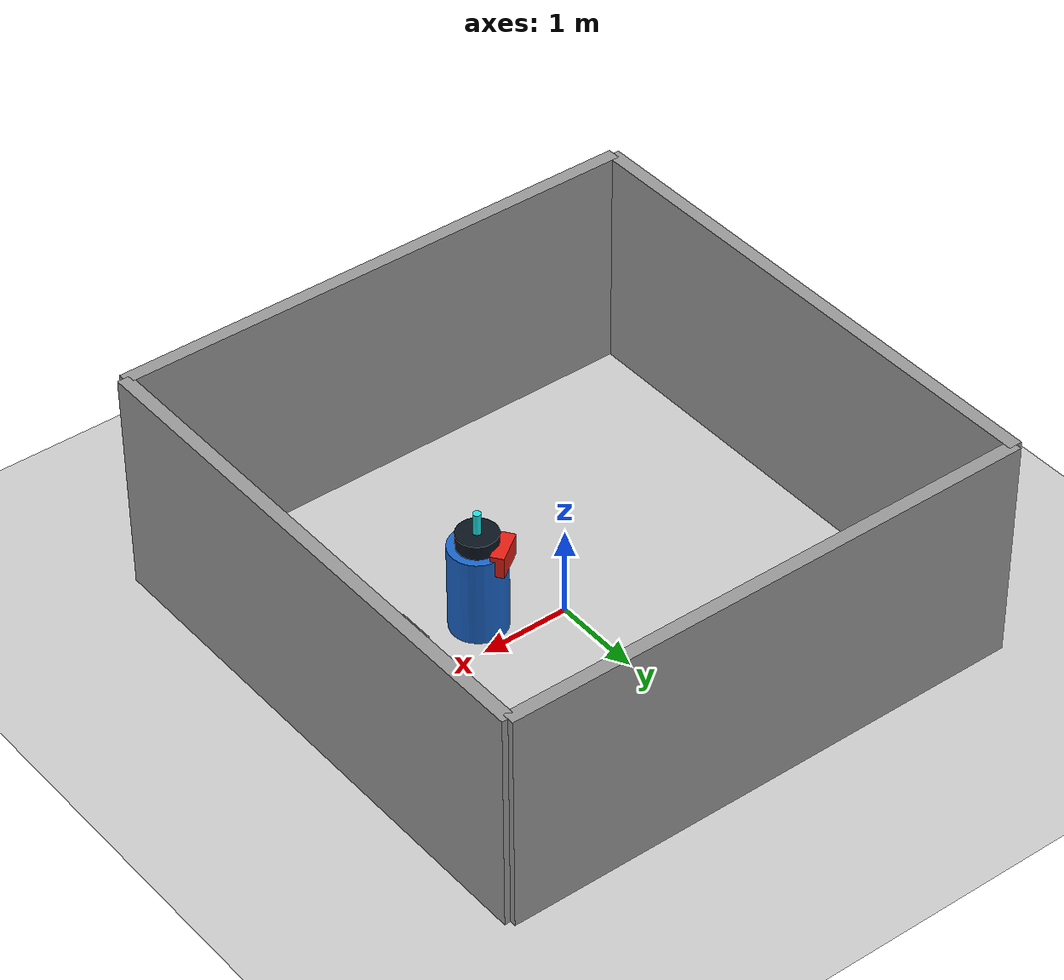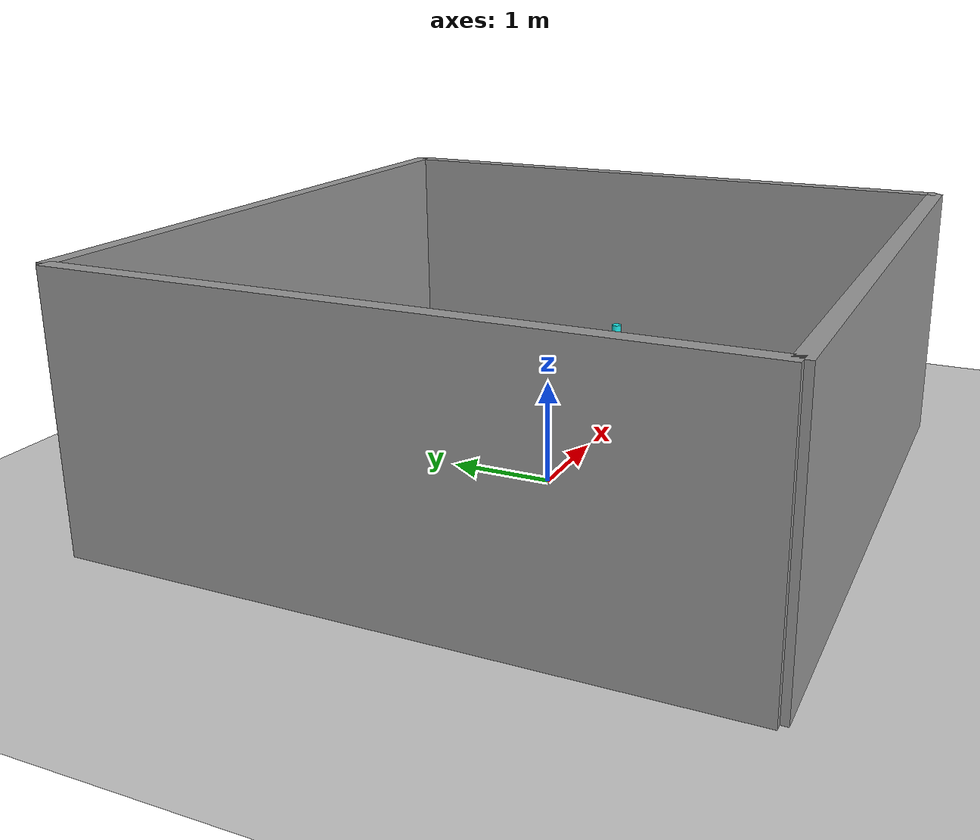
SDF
<sdf version="1.7">
 <world name="default">
  <plugin name="socnav_plugin" filename="libSocNavPlugin.so">
   <robot_name>robot</robot_name>
   <trajectory_file>/home/hunav_gz_classic_ws/SocNav3_trajectories/src6/000003812.json</trajectory_file>
   <human_slots>2</human_slots>
   <goal_angle_mesh>
    <angle_threshold>1.73720794025</angle_threshold>
    <uri>/home/hunav_gz_classic_ws/src/socnav_gazebo_reproducer/meshes/000003812_goal_angle_00.stl</uri>
   </goal_angle_mesh>
  </plugin>
  <light name="sun" type="directional">
   <pose>0 0 10 0 -0 0</pose>
   <diffuse>0.8 0.8 0.8 1</diffuse>
   <specular>0.2 0.2 0.2 1</specular>
   <attenuation>
    <range>1000</range>
    <constant>0.9</constant>
    <linear>0.01</linear>
    <quadratic>0.001</quadratic>
   </attenuation>
   <direction>-0.5 0.1 -0.9</direction>
   <spot><inner_angle>0</inner_angle><outer_angle>0</outer_angle><falloff>0</falloff></spot>
  </light>
  <model name="ground_plane">
   <static>1</static>
   <link name="link">
    <collision name="collision">
     <geometry><plane><normal>0 0 1</normal><size>100 100</size></plane></geometry>
     <surface><friction><ode><mu>100</mu><mu2>50</mu2></ode></friction></surface>
    </collision>
    <visual name="visual">
     <cast_shadows>0</cast_shadows>
     <geometry><plane><normal>0 0 1</normal><size>100 100</size></plane></geometry>
     <material>
      <script><uri>file://media/materials/scripts/kitchen.material</uri><name>Kitchen/CounterTop_H</name></script>
     </material>
    </visual>
   </link>
  </model>
  <gravity>0 0 -9.8</gravity>
  <magnetic_field>6e-06 2.3e-05 -4.2e-05</magnetic_field>
  <atmosphere type="adiabatic"/>
  <physics type="ode">
   <max_step_size>0.001</max_step_size>
   <real_time_factor>1</real_time_factor>
   <real_time_update_rate>1000</real_time_update_rate>
  </physics>
  <scene><ambient>0.4 0.4 0.4 1</ambient><background>0.7 0.7 0.7 1</background><shadows>1</shadows></scene>
  <audio><device>default</device></audio>
  <spherical_coordinates>
   <surface_model>EARTH_WGS84</surface_model>
   <latitude_deg>0</latitude_deg>
   <longitude_deg>0</longitude_deg>
   <elevation>0</elevation>
   <heading_deg>0</heading_deg>
  </spherical_coordinates>
  <model name="robot">
   <pose>0.7724217691300973 -0.3807357211718754 0.5 0 0 2.1834694827475984</pose>
   <link name="link">
    <collision name="collision">
     <geometry><cylinder><radius>0.3061180240894409</radius><length>1.0</length></cylinder></geometry>
    </collision>
    <visual name="visual">
     <geometry><cylinder><radius>0.3061180240894409</radius><length>1.0</length></cylinder></geometry>
     <material><ambient>0.1 0.4 0.8 1</ambient><diffuse>0.1 0.4 0.8 1</diffuse></material>
    </visual>
    <visual name="robot_top">
     <pose>0 0 0.58 0 0 0</pose>
     <geometry><cylinder><radius>0.22040497734439743</radius><length>0.16</length></cylinder></geometry>
     <material><ambient>0.04 0.08 0.12 1</ambient><diffuse>0.04 0.08 0.12 1</diffuse></material>
    </visual>
    <visual name="robot_front">
     <pose>0.25713914023513035 0 0.44 0 0 0</pose>
     <geometry><box><size>0.14693665156293162 0.3918310708344843 0.24</size></box></geometry>
     <material><ambient>0.9 0.12 0.08 1</ambient><diffuse>0.9 0.12 0.08 1</diffuse></material>
    </visual>
    <visual name="robot_sensor">
     <pose>0 0 0.78 0 0 0</pose>
     <geometry><cylinder><radius>0.04285652337252173</radius><length>0.24</length></cylinder></geometry>
     <material><ambient>0.1 0.9 0.9 1</ambient><diffuse>0.1 0.9 0.9 1</diffuse></material>
    </visual>
   </link>
  </model>
  <model name="static_object_0">
   <static>true</static>
   <pose>1.9610983309893162 -0.05040842554419234 0.375 0 0 0</pose>
   <link name="link">
    <collision name="collision">
     <geometry><box><size>0.4070274046623972 0.4070274046623972 0.75</size></box></geometry>
    </collision>
    <visual name="visual">
     <geometry><box><size>0.4070274046623972 0.4070274046623972 0.75</size></box></geometry>
     <material><ambient>0.55 0.55 0.55 1</ambient><diffuse>0.55 0.55 0.55 1</diffuse></material>
    </visual>
   </link>
  </model>
  <model name="simple_world_test">
   <link name="Wall_0">
    <collision name="Wall_0_Collision">
     <geometry><box><size>5.961588337013668 0.15 2.5</size></box></geometry>
     <pose>0 0 1.25 0 -0 0</pose>
    </collision>
    <visual name="Wall_0_Visual">
     <pose>0 0 1.25 0 -0 0</pose>
     <geometry><box><size>5.961588337013668 0.15 2.5</size></box></geometry>
     <material>
      <script><uri>file://media/materials/scripts/gazebo.material</uri><name>Gazebo/Grey</name></script>
      <ambient>1 1 1 1</ambient>
     </material>
     <meta><layer>0</layer></meta>
    </visual>
    <pose>2.9707941685068344 0.0 0 0 -0 -1.5707963267948966</pose>
   </link>
   <link name="Wall_1">
    <collision name="Wall_1_Collision">
     <geometry><box><size>5.961588337013668 0.15 2.5</size></box></geometry>
     <pose>0 0 1.25 0 -0 0</pose>
    </collision>
    <visual name="Wall_1_Visual">
     <pose>0 0 1.25 0 -0 0</pose>
     <geometry><box><size>5.961588337013668 0.15 2.5</size></box></geometry>
     <material>
      <script><uri>file://media/materials/scripts/gazebo.material</uri><name>Gazebo/Grey</name></script>
      <ambient>1 1 1 1</ambient>
     </material>
     <meta><layer>0</layer></meta>
    </visual>
    <pose>0.0 -2.9707941685068344 0 0 -0 -3.141592653589793</pose>
   </link>
   <link name="Wall_2">
    <collision name="Wall_2_Collision">
     <geometry><box><size>5.961588337013668 0.15 2.5</size></box></geometry>
     <pose>0 0 1.25 0 -0 0</pose>
    </collision>
    <visual name="Wall_2_Visual">
     <pose>0 0 1.25 0 -0 0</pose>
     <geometry><box><size>5.961588337013668 0.15 2.5</size></box></geometry>
     <material>
      <script><uri>file://media/materials/scripts/gazebo.material</uri><name>Gazebo/Grey</name></script>
      <ambient>1 1 1 1</ambient>
     </material>
     <meta><layer>0</layer></meta>
    </visual>
    <pose>-2.9707941685068344 0.0 0 0 -0 1.5707963267948966</pose>
   </link>
   <link name="Wall_3">
    <collision name="Wall_3_Collision">
     <geometry><box><size>5.961588337013668 0.15 2.5</size></box></geometry>
     <pose>0 0 1.25 0 -0 0</pose>
    </collision>
    <visual name="Wall_3_Visual">
     <pose>0 0 1.25 0 -0 0</pose>
     <geometry><box><size>5.961588337013668 0.15 2.5</size></box></geometry>
     <material>
      <script><uri>file://media/materials/scripts/gazebo.material</uri><name>Gazebo/Grey</name></script>
      <ambient>1 1 1 1</ambient>
     </material>
     <meta><layer>0</layer></meta>
    </visual>
    <pose>0.0 2.9707941685068344 0 0 -0 0.0</pose>
   </link>
   <static>1</static>
  </model>
 </world>
</sdf>
